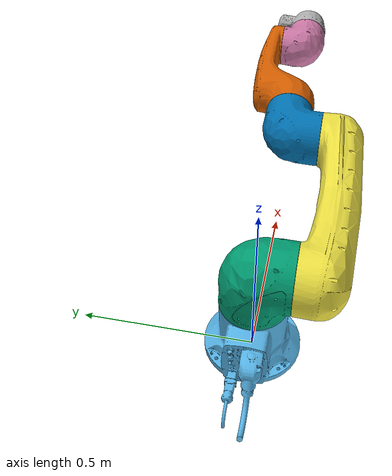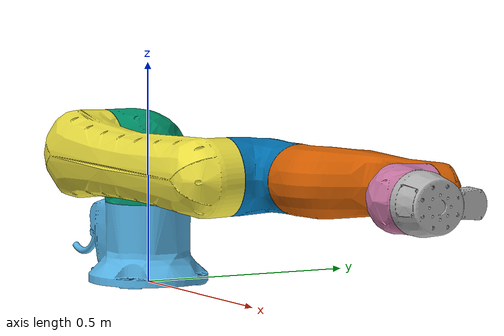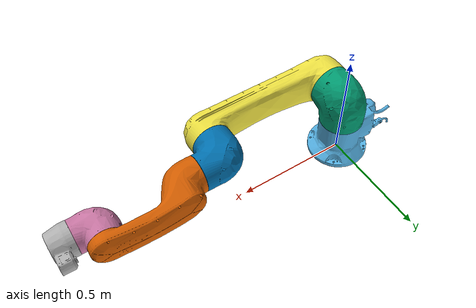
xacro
<?xml version="1.0"?>
<robot xmlns:xacro="http://www.ros.org/wiki/xacro" name="lbr_iisy11_r1300">
  <!-- Import iisy macro files  -->
  <xacro:include filename="$(find kuka_lbr_iisy_support)/urdf/lbr_iisy11_r1300_macro.xacro"/>
  <xacro:include filename="$(find kuka_lbr_iisy_support)/urdf/lbr_iisy_ros2_control_macro.xacro"/>
  <!-- Read additional arguments  -->
  <xacro:arg name="driver_version" default="rsi_only"/>
  <xacro:arg name="mode" default="hardware"/>
  <xacro:arg name="use_gpio" default="false"/>
  <xacro:arg name="roundtrip_time" default="0"/>
  <xacro:arg name="client_ip" default="0.0.0.0"/>
  <xacro:arg name="client_port" default="59152"/>
  <xacro:arg name="mxa_client_port" default="1336"/>
  <xacro:arg name="controller_ip" default="0.0.0.0"/>
  <xacro:arg name="verify_robot_model" default="true"/>
  <xacro:arg name="qos_config_file" default=""/>
  <xacro:arg name="prefix" default=""/>
  <xacro:arg name="is_async" default="false"/>
  <xacro:arg name="async_thread_priority" default="69"/>
  <xacro:arg name="async_affinity" default="[]"/>
  <xacro:arg name="x" default="0"/>
  <xacro:arg name="y" default="0"/>
  <xacro:arg name="z" default="0"/>
  <xacro:arg name="roll" default="0"/>
  <xacro:arg name="pitch" default="0"/>
  <xacro:arg name="yaw" default="0"/>
  <xacro:arg name="rsi_xml_config_file" default=""/>
  <xacro:kuka_lbr_iisy_ros2_control name="$(arg prefix)lbr_iisy11_r1300" driver_version="$(arg driver_version)" client_ip="$(arg client_ip)" client_port="$(arg client_port)" mxa_client_port="$(arg mxa_client_port)" controller_ip="$(arg controller_ip)" prefix="$(arg prefix)" mode="$(arg mode)" use_gpio="$(arg use_gpio)" roundtrip_time="$(arg roundtrip_time)" verify_robot_model="$(arg verify_robot_model)" qos_config_file="$(arg qos_config_file)" rsi_xml_config_file="$(arg rsi_xml_config_file)" is_async="$(arg is_async)" async_thread_priority="$(arg async_thread_priority)" async_affinity="$(arg async_affinity)">
    <ext_axes_ros2_control_joints/>
  </xacro:kuka_lbr_iisy_ros2_control>
  <!-- world link -->
  <link name="world"/>
  <!-- robot links, joints -->
  <xacro:kuka_lbr_iisy11_r1300_robot prefix="$(arg prefix)" package_name="kuka_lbr_iisy_support"/>
  <!-- default world - base_link joint -->
  <joint name="$(arg prefix)world-base_link" type="fixed">
    <parent link="world"/>
    <child link="$(arg prefix)base_link"/>
    <origin xyz="$(arg x) $(arg y) $(arg z)" rpy="$(arg roll) $(arg pitch) $(arg yaw)"/>
  </joint>
</robot>

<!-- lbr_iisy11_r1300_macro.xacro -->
<robot xmlns:xacro="http://www.ros.org/wiki/xacro" name="lbr_iisy11_r1300">
  <!-- include helper xacros -->
  <xacro:include filename="$(find kuka_resources)/urdf/common_materials.xacro"/>
  <xacro:macro name="kuka_lbr_iisy11_r1300_robot" params="prefix package_name">
    <!-- links - main serial chain -->
    <link name="${prefix}base_link">
      <collision>
        <geometry>
          <mesh filename="package://${package_name}/meshes/lbr_iisy11_r1300/collision/base_link.stl"/>
        </geometry>
        <origin rpy="-0.0 0.0 -0.0" xyz="0.0 0.0 0.0"/>
      </collision>
      <inertial>
        <inertia ixx="1.0" ixy="0.0" ixz="0.0" iyy="1.0" iyz="0.0" izz="1.0"/>
        <mass value="8.666E0"/>
        <origin rpy="0.0 -0.0 0.0" xyz="0.0 0.0 0.0"/>
      </inertial>
      <visual>
        <geometry>
          <mesh filename="package://${package_name}/meshes/lbr_iisy11_r1300/visual/base_link.stl"/>
        </geometry>
        <origin rpy="-0.0 0.0 -0.0" xyz="0.0 0.0 0.0"/>
        <xacro:material_kuka_ral_pure_white/>
      </visual>
    </link>
    <link name="${prefix}link_1">
      <collision>
        <geometry>
          <mesh filename="package://${package_name}/meshes/lbr_iisy11_r1300/collision/link_1.stl"/>
        </geometry>
        <origin rpy="-0.0 0.0 -0.0" xyz="0.0 0.0 0.0"/>
      </collision>
      <inertial>
        <inertia ixx="0.0489108039022503" ixy="0.0" ixz="0.0" iyy="0.038370593540088" iyz="0.0" izz="0.0522121642769911"/>
        <mass value="9.62E0"/>
        <origin rpy="-1.3035636348359196 -0.7815781053554712 1.2529437882898178" xyz="0.00344301039501039 0.0191980353430353 -0.08662803846153849"/>
      </inertial>
      <visual>
        <geometry>
          <mesh filename="package://${package_name}/meshes/lbr_iisy11_r1300/visual/link_1.stl"/>
        </geometry>
        <origin rpy="-0.0 0.0 -0.0" xyz="0.0 0.0 0.0"/>
        <xacro:material_kuka_ral_pure_white/>
      </visual>
    </link>
    <link name="${prefix}link_2">
      <collision>
        <geometry>
          <mesh filename="package://${package_name}/meshes/lbr_iisy11_r1300/collision/link_2.stl"/>
        </geometry>
        <origin rpy="-0.0 0.0 -0.0" xyz="0.0 0.0 0.0"/>
      </collision>
      <inertial>
        <inertia ixx="0.609923712050298" ixy="0.0" ixz="0.0" iyy="0.0385097671170806" iyz="0.0" izz="0.617803845441985"/>
        <mass value="9.86515786038357E0"/>
        <origin rpy="-0.0037282594736534596 -0.018939981545576166 -1.569953728930981" xyz="0.249085185084359 -0.00442629366790902 -0.0535128397562821"/>
      </inertial>
      <visual>
        <geometry>
          <mesh filename="package://${package_name}/meshes/lbr_iisy11_r1300/visual/link_2.stl"/>
        </geometry>
        <origin rpy="-0.0 0.0 -0.0" xyz="0.0 0.0 0.0"/>
        <xacro:material_kuka_ral_pure_white/>
      </visual>
    </link>
    <link name="${prefix}link_3">
      <collision>
        <geometry>
          <mesh filename="package://${package_name}/meshes/lbr_iisy11_r1300/collision/link_3.stl"/>
        </geometry>
        <origin rpy="-0.0 0.0 -0.0" xyz="0.0 0.0 0.0"/>
      </collision>
      <inertial>
        <inertia ixx="0.0181557035426496" ixy="0.0" ixz="0.0" iyy="0.0346916391676837" iyz="0.0" izz="0.037776951242458"/>
        <mass value="7.49283573690527E0"/>
        <origin rpy="0.1692981167548117 0.5271433699021747 -2.9605806714357508" xyz="0.0438696763639649 -0.00482189531013714 0.044913251068375"/>
      </inertial>
      <visual>
        <geometry>
          <mesh filename="package://${package_name}/meshes/lbr_iisy11_r1300/visual/link_3.stl"/>
        </geometry>
        <origin rpy="-0.0 0.0 -0.0" xyz="0.0 0.0 0.0"/>
        <xacro:material_kuka_ral_pure_white/>
      </visual>
    </link>
    <link name="${prefix}link_4">
      <collision>
        <geometry>
          <mesh filename="package://${package_name}/meshes/lbr_iisy11_r1300/collision/link_4.stl"/>
        </geometry>
        <origin rpy="-0.0 0.0 -0.0" xyz="0.0 0.0 0.0"/>
      </collision>
      <inertial>
        <inertia ixx="0.0283133115058557" ixy="0.0" ixz="0.0" iyy="0.15625788909506" iyz="0.0" izz="0.163792683235523"/>
        <mass value="7.09182257561761E0"/>
        <origin rpy="1.4927296069780172 -1.403978512066052 -1.5036439267584298" xyz="-7.163989476214221E-5 0.0445982847464326 -0.175445521620292"/>
      </inertial>
      <visual>
        <geometry>
          <mesh filename="package://${package_name}/meshes/lbr_iisy11_r1300/visual/link_4.stl"/>
        </geometry>
        <origin rpy="-0.0 0.0 -0.0" xyz="0.0 0.0 0.0"/>
        <xacro:material_kuka_ral_pure_white/>
      </visual>
    </link>
    <link name="${prefix}link_5">
      <collision>
        <geometry>
          <mesh filename="package://${package_name}/meshes/lbr_iisy11_r1300/collision/link_5.stl"/>
        </geometry>
        <origin rpy="-0.0 0.0 -0.0" xyz="0.0 0.0 0.0"/>
      </collision>
      <inertial>
        <inertia ixx="0.00667288072123254" ixy="0.0" ixz="0.0" iyy="0.00503543168148481" iyz="0.0" izz="0.00841044585602456"/>
        <mass value="2.4516241997261E0"/>
        <origin rpy="0.4256203528755516 0.14544264795709014 1.2195648324165669" xyz="0.0384076101043046 0.00235993465013012 -0.0244545111288499"/>
      </inertial>
      <visual>
        <geometry>
          <mesh filename="package://${package_name}/meshes/lbr_iisy11_r1300/visual/link_5.stl"/>
        </geometry>
        <origin rpy="-0.0 0.0 -0.0" xyz="0.0 0.0 0.0"/>
        <xacro:material_kuka_ral_pure_white/>
      </visual>
    </link>
    <link name="${prefix}link_6">
      <collision>
        <geometry>
          <mesh filename="package://${package_name}/meshes/lbr_iisy11_r1300/collision/link_6.stl"/>
        </geometry>
        <origin rpy="-0.0 0.0 -0.0" xyz="0.0 0.0 0.0"/>
      </collision>
      <inertial>
        <inertia ixx="0.00390274036654823" ixy="0.0" ixz="0.0" iyy="0.00286930887521153" iyz="0.0" izz="0.00403512413298348"/>
        <mass value="1.23566751268437E0"/>
        <origin rpy="-0.051936335875096745 -0.1296523529795729 -0.0038347791577379832" xyz="0.00315856028595676 0.0135678555121583 -0.038876254431844504"/>
      </inertial>
      <visual>
        <geometry>
          <mesh filename="package://${package_name}/meshes/lbr_iisy11_r1300/visual/link_6.stl"/>
        </geometry>
        <origin rpy="-0.0 0.0 -0.0" xyz="0.0 0.0 0.0"/>
        <xacro:material_kuka_ral_pure_white/>
      </visual>
    </link>
    <!-- joints - main serial chain -->
    <joint name="${prefix}joint_1" type="revolute">
      <axis xyz="0.0 0.0 1.0"/>
      <child link="${prefix}link_1"/>
      <limit effort="4.0584E2" lower="-3.2288591125E0" upper="3.2288591125E0" velocity="3.49065850398866E0"/>
      <origin rpy="${pi} -0.0 0.0" xyz="0.0 0.0 0.1845"/>
      <parent link="${prefix}base_link"/>
    </joint>
    <joint name="${prefix}joint_2" type="revolute">
      <axis xyz="0.0 0.0 1.0"/>
      <child link="${prefix}link_2"/>
      <limit effort="366.247685" lower="-4.014257279586958E0" upper="8.726646259971648E-1" velocity="3.490656"/>
      <origin rpy="${pi/2.0} 0.0 -0.0" xyz="0.0 0.1011 -0.1155"/>
      <parent link="${prefix}link_1"/>
    </joint>
    <joint name="${prefix}joint_3" type="revolute">
      <axis xyz="0.0 0.0 1.0"/>
      <child link="${prefix}link_3"/>
      <limit effort="1.47189439778934E2" lower="-2.617993875E0" upper="2.617993875E0" velocity="3.49065850398866E0"/>
      <origin rpy="0.0 -0.0 0.0" xyz="0.59 0.0 0.0237"/>
      <parent link="${prefix}link_2"/>
    </joint>
    <joint name="${prefix}joint_4" type="revolute">
      <axis xyz="0.0 0.0 1.0"/>
      <child link="${prefix}link_4"/>
      <limit effort="6.54825468125571E1" lower="-3.14159265E0" upper="3.14159265E0" velocity="4.01425727958696E0"/>
      <origin rpy="${pi/2} -0.0 ${-pi/2}" xyz="0.1139 0.0 0.0774"/>
      <parent link="${prefix}link_3"/>
    </joint>
    <joint name="${prefix}joint_5" type="revolute">
      <axis xyz="0.0 0.0 1.0"/>
      <child link="${prefix}link_5"/>
      <limit effort="6.46576468348751E1" lower="-1.919862175E0" upper="1.919862175E0" velocity="4.53785605518526E0"/>
      <origin rpy="0.0 ${pi/2} ${pi/2}" xyz="0.0 0.0507 -0.4181"/>
      <parent link="${prefix}link_4"/>
    </joint>
    <joint name="${prefix}joint_6" type="revolute">
      <axis xyz="0.0 0.0 1.0"/>
      <child link="${prefix}link_6"/>
      <limit effort="1.57202326869092E1" lower="-3.83972435E0" upper="3.83972435E0" velocity="7.50491578357562E0"/>
      <origin rpy="${pi/2} -0.0 ${-pi/2}" xyz="0.0837 0.0 -0.0507"/>
      <parent link="${prefix}link_5"/>
    </joint>
    <!-- ROS-Industrial 'base' frame - equivalent of 'KUKA ROBROOT'-->
    <link name="${prefix}base"/>
    <joint name="${prefix}base_link-base" type="fixed">
      <origin xyz="0 0 0" rpy="0 0 0"/>
      <parent link="${prefix}base_link"/>
      <child link="${prefix}base"/>
    </joint>
    <!-- ROS-Industrial 'flange' frame - attachment point for EEF models -->
    <link name="${prefix}flange"/>
    <joint name="${prefix}link6-flange" type="fixed">
      <child link="${prefix}flange"/>
      <origin rpy="0.0 ${pi/2} 0.0" xyz="0.0 0.0 -0.0943"/>
      <parent link="${prefix}link_6"/>
    </joint>
    <!-- ROS-Industrial 'tool0' frame - all-zeros tool frame -->
    <link name="${prefix}tool0"/>
    <joint name="${prefix}link6-tool0" type="fixed">
      <child link="${prefix}tool0"/>
      <origin rpy="0.0 ${pi} 0.0" xyz="0.0 0.0 -0.0943"/>
      <parent link="${prefix}link_6"/>
    </joint>
  </xacro:macro>
</robot>
